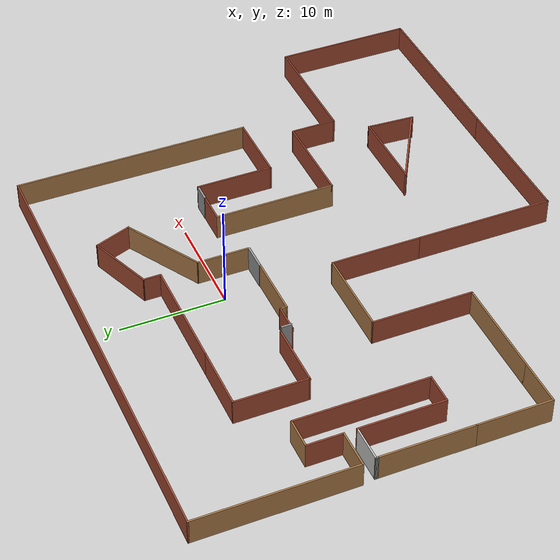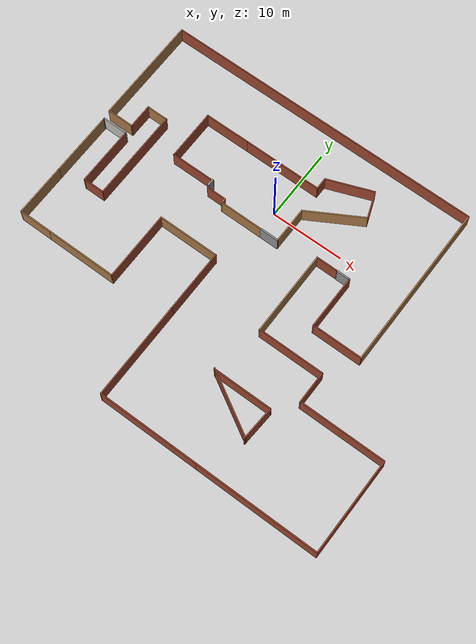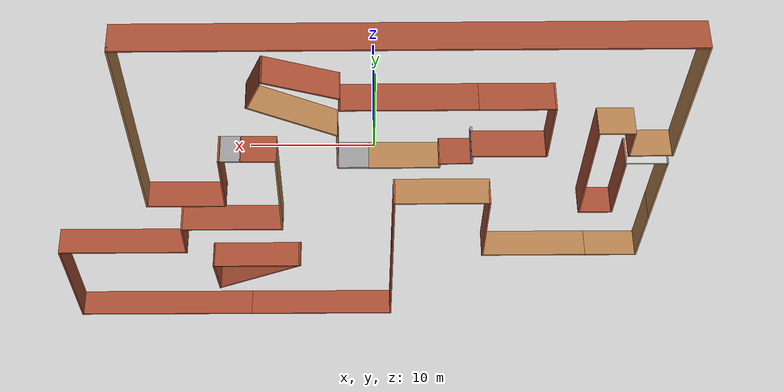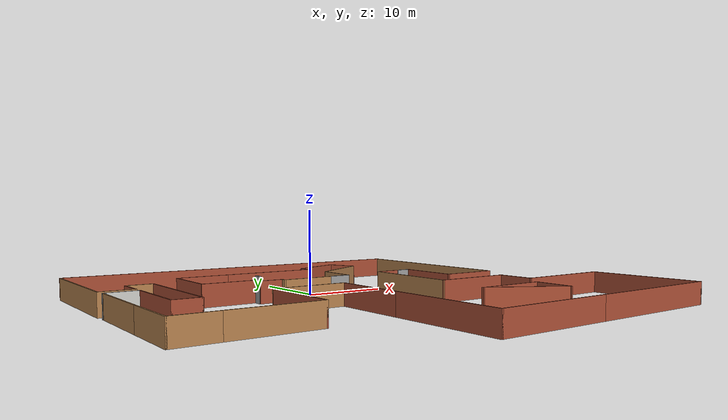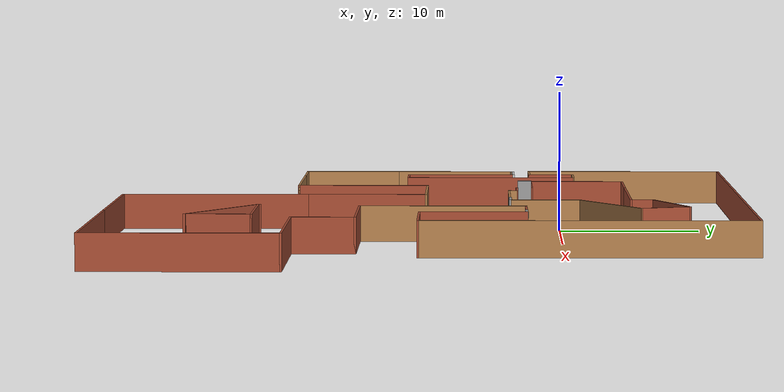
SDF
<?xml version='1.0'?>
<sdf version='1.7'>
  <model name='world_Car'>
    <pose>2.29991 -9.29098 0 0 -0 0</pose>
    <link name='Door_1'>
      <collision name='Door_1_Collision'>
        <geometry>
          <box>
            <size>1.664 0.2 2.5</size>
          </box>
        </geometry>
        <pose>0 0 1.25 0 -0 0</pose>
      </collision>
      <visual name='Door_1_Visual'>
        <pose>0 0 1.25 0 -0 0</pose>
        <geometry>
          <box>
            <size>1.664 0.2 2.5</size>
          </box>
        </geometry>
        <material>
          <script>
            <uri>file://media/materials/scripts/gazebo.material</uri>
            <name>Gazebo/Grey</name>
          </script>
        </material>
      </visual>
      <pose>9.70506 6.77905 0 0 -0 0</pose>
    </link>
    <link name='Door_2'>
      <collision name='Door_2_Collision'>
        <geometry>
          <box>
            <size>2.582 0.2 2.5</size>
          </box>
        </geometry>
        <pose>0 0 1.25 0 -0 0</pose>
      </collision>
      <visual name='Door_2_Visual'>
        <pose>0 0 1.25 0 -0 0</pose>
        <geometry>
          <box>
            <size>2.582 0.2 2.5</size>
          </box>
        </geometry>
        <material>
          <script>
            <uri>file://media/materials/scripts/gazebo.material</uri>
            <name>Gazebo/Grey</name>
          </script>
        </material>
      </visual>
      <pose>-0.559145 5.75033 0 0 -0 0</pose>
    </link>
    <link name='Wall_10'>
      <collision name='Wall_10_Collision'>
        <geometry>
          <box>
            <size>15 0.15 2.5</size>
          </box>
        </geometry>
        <pose>0 0 1.25 0 -0 0</pose>
      </collision>
      <visual name='Wall_10_Visual'>
        <pose>0 0 1.25 0 -0 0</pose>
        <geometry>
          <box>
            <size>15 0.15 2.5</size>
          </box>
        </geometry>
        <material>
          <script>
            <uri>file://media/materials/scripts/gazebo.material</uri>
            <name>Gazebo/Wood</name>
          </script>
          <ambient>1 1 1 1</ambient>
        </material>
        <meta>
          <layer>0</layer>
        </meta>
      </visual>
      <pose>-26.8438 14.8473 0 0 -0 -1.5708</pose>
    </link>
    <link name='Wall_101'>
      <collision name='Wall_101_Collision'>
        <geometry>
          <box>
            <size>8.25 0.15 2.5</size>
          </box>
        </geometry>
        <pose>0 0 1.25 0 -0 0</pose>
      </collision>
      <visual name='Wall_101_Visual'>
        <pose>0 0 1.25 0 -0 0</pose>
        <geometry>
          <box>
            <size>8.25 0.15 2.5</size>
          </box>
        </geometry>
        <material>
          <script>
            <uri>file://media/materials/scripts/gazebo.material</uri>
            <name>Gazebo/Wood</name>
          </script>
          <ambient>1 1 1 1</ambient>
        </material>
        <meta>
          <layer>0</layer>
        </meta>
      </visual>
      <pose>4.23205 12.7345 0 0 -0 -2.61799</pose>
    </link>
    <link name='Wall_103'>
      <collision name='Wall_103_Collision'>
        <geometry>
          <box>
            <size>5 0.15 2.5</size>
          </box>
        </geometry>
        <pose>0 0 1.25 0 -0 0</pose>
      </collision>
      <visual name='Wall_103_Visual'>
        <pose>0 0 1.25 0 -0 0</pose>
        <geometry>
          <box>
            <size>5 0.15 2.5</size>
          </box>
        </geometry>
        <material>
          <script>
            <uri>file://media/materials/scripts/gazebo.material</uri>
            <name>Gazebo/Wood</name>
          </script>
          <ambient>1 1 1 1</ambient>
        </material>
        <meta>
          <layer>0</layer>
        </meta>
      </visual>
      <pose>0.724642 8.28455 0 0 -0 -1.5708</pose>
    </link>
    <link name='Wall_105'>
      <collision name='Wall_105_Collision'>
        <geometry>
          <box>
            <size>6 0.15 2.5</size>
          </box>
        </geometry>
        <pose>0 0 1.25 0 -0 0</pose>
      </collision>
      <visual name='Wall_105_Visual'>
        <pose>0 0 1.25 0 -0 0</pose>
        <geometry>
          <box>
            <size>6 0.15 2.5</size>
          </box>
        </geometry>
        <material>
          <script>
            <uri>file://media/materials/scripts/gazebo.material</uri>
            <name>Gazebo/Wood</name>
          </script>
          <ambient>1 1 1 1</ambient>
        </material>
        <meta>
          <layer>0</layer>
        </meta>
      </visual>
      <pose>-4.8152 5.7206 0 0 -0 3.14159</pose>
    </link>
    <link name='Wall_106'>
      <collision name='Wall_106_Collision'>
        <geometry>
          <box>
            <size>0.75 0.15 2.5</size>
          </box>
        </geometry>
        <pose>0 0 1.25 0 -0 0</pose>
      </collision>
      <visual name='Wall_106_Visual'>
        <pose>0 0 1.25 0 -0 0</pose>
        <geometry>
          <box>
            <size>0.75 0.15 2.5</size>
          </box>
        </geometry>
        <material>
          <script>
            <uri>file://media/materials/scripts/gazebo.material</uri>
            <name>Gazebo/Wood</name>
          </script>
          <ambient>1 1 1 1</ambient>
        </material>
        <meta>
          <layer>0</layer>
        </meta>
      </visual>
      <pose>-7.7402 6.0206 0 0 -0 1.5708</pose>
    </link>
    <link name='Wall_107'>
      <collision name='Wall_107_Collision'>
        <geometry>
          <box>
            <size>2.76255 0.15 2.5</size>
          </box>
        </geometry>
        <pose>0 0 1.25 0 -0 0</pose>
      </collision>
      <visual name='Wall_107_Visual'>
        <pose>0 0 1.25 0 -0 0</pose>
        <geometry>
          <box>
            <size>2.76255 0.15 2.5</size>
          </box>
        </geometry>
        <material>
          <script>
            <uri>file://media/materials/scripts/gazebo.material</uri>
            <name>Gazebo/Bricks</name>
          </script>
          <ambient>1 1 1 1</ambient>
        </material>
        <meta>
          <layer>0</layer>
        </meta>
      </visual>
      <pose>-9.04647 6.32244 0 0 -0 3.14019</pose>
    </link>
    <link name='Wall_113'>
      <collision name='Wall_113_Collision'>
        <geometry>
          <box>
            <size>6.25 0.15 2.5</size>
          </box>
        </geometry>
        <pose>0 0 1.25 0 -0 0</pose>
      </collision>
      <visual name='Wall_113_Visual'>
        <pose>0 0 1.25 0 -0 0</pose>
        <geometry>
          <box>
            <size>6.25 0.15 2.5</size>
          </box>
        </geometry>
        <material>
          <script>
            <uri>file://media/materials/scripts/gazebo.material</uri>
            <name>Gazebo/Bricks</name>
          </script>
          <ambient>1 1 1 1</ambient>
        </material>
        <meta>
          <layer>0</layer>
        </meta>
      </visual>
      <pose>-13.4438 7.42225 0 0 -0 0</pose>
    </link>
    <link name='Wall_116'>
      <collision name='Wall_116_Collision'>
        <geometry>
          <box>
            <size>3.75 0.15 2.5</size>
          </box>
        </geometry>
        <pose>0 0 1.25 0 -0 0</pose>
      </collision>
      <visual name='Wall_116_Visual'>
        <pose>0 0 1.25 0 -0 0</pose>
        <geometry>
          <box>
            <size>3.75 0.15 2.5</size>
          </box>
        </geometry>
        <material>
          <script>
            <uri>file://media/materials/scripts/gazebo.material</uri>
            <name>Gazebo/Wood</name>
          </script>
          <ambient>1 1 1 1</ambient>
        </material>
        <meta>
          <layer>0</layer>
        </meta>
      </visual>
      <pose>-25.0438 7.42225 0 0 -0 0</pose>
    </link>
    <link name='Wall_117'>
      <collision name='Wall_117_Collision'>
        <geometry>
          <box>
            <size>3.5 0.15 2.5</size>
          </box>
        </geometry>
        <pose>0 0 1.25 0 -0 0</pose>
      </collision>
      <visual name='Wall_117_Visual'>
        <pose>0 0 1.25 0 -0 0</pose>
        <geometry>
          <box>
            <size>3.5 0.15 2.5</size>
          </box>
        </geometry>
        <material>
          <script>
            <uri>file://media/materials/scripts/gazebo.material</uri>
            <name>Gazebo/Bricks</name>
          </script>
          <ambient>1 1 1 1</ambient>
        </material>
        <meta>
          <layer>0</layer>
        </meta>
      </visual>
      <pose>-23.2438 9.09725 0 0 -0 1.5708</pose>
    </link>
    <link name='Wall_118'>
      <collision name='Wall_118_Collision'>
        <geometry>
          <box>
            <size>3 0.15 2.5</size>
          </box>
        </geometry>
        <pose>0 0 1.25 0 -0 0</pose>
      </collision>
      <visual name='Wall_118_Visual'>
        <pose>0 0 1.25 0 -0 0</pose>
        <geometry>
          <box>
            <size>3 0.15 2.5</size>
          </box>
        </geometry>
        <material>
          <script>
            <uri>file://media/materials/scripts/gazebo.material</uri>
            <name>Gazebo/Wood</name>
          </script>
          <ambient>1 1 1 1</ambient>
        </material>
        <meta>
          <layer>0</layer>
        </meta>
      </visual>
      <pose>-21.8188 10.7723 0 0 -0 0</pose>
    </link>
    <link name='Wall_12'>
      <collision name='Wall_12_Collision'>
        <geometry>
          <box>
            <size>7.04626 0.15 2.5</size>
          </box>
        </geometry>
        <pose>0 0 1.25 0 -0 0</pose>
      </collision>
      <visual name='Wall_12_Visual'>
        <pose>0 0 1.25 0 -0 0</pose>
        <geometry>
          <box>
            <size>7.04626 0.15 2.5</size>
          </box>
        </geometry>
        <material>
          <script>
            <uri>file://media/materials/scripts/gazebo.material</uri>
            <name>Gazebo/Bricks</name>
          </script>
          <ambient>1 1 1 1</ambient>
        </material>
        <meta>
          <layer>0</layer>
        </meta>
      </visual>
      <pose>-16.4938 10.8704 0 0 -0 1.5708</pose>
    </link>
    <link name='Wall_123'>
      <collision name='Wall_123_Collision'>
        <geometry>
          <box>
            <size>3.6035 0.15 2.5</size>
          </box>
        </geometry>
        <pose>0 0 1.25 0 -0 0</pose>
      </collision>
      <visual name='Wall_123_Visual'>
        <pose>0 0 1.25 0 -0 0</pose>
        <geometry>
          <box>
            <size>3.6035 0.15 2.5</size>
          </box>
        </geometry>
        <material>
          <script>
            <uri>file://media/materials/scripts/gazebo.material</uri>
            <name>Gazebo/CeilingTiled</name>
          </script>
          <ambient>1 1 1 1</ambient>
        </material>
        <meta>
          <layer>0</layer>
        </meta>
      </visual>
      <pose>-24.9424 6.19868 0 0 -0 3.14159</pose>
    </link>
    <link name='Wall_124'>
      <collision name='Wall_124_Collision'>
        <geometry>
          <box>
            <size>0.321428 0.15 2.5</size>
          </box>
        </geometry>
        <pose>0 0 1.25 0 -0 0</pose>
      </collision>
      <visual name='Wall_124_Visual'>
        <pose>0 0 1.25 0 -0 0</pose>
        <geometry>
          <box>
            <size>0.321428 0.15 2.5</size>
          </box>
        </geometry>
        <material>
          <script>
            <uri>file://media/materials/scripts/gazebo.material</uri>
            <name>Gazebo/Grey</name>
          </script>
          <ambient>1 1 1 1</ambient>
        </material>
        <meta>
          <layer>0</layer>
        </meta>
      </visual>
      <pose>-26.6627 6.11322 0 0 -0 -1.49508</pose>
    </link>
    <link name='Wall_125'>
      <collision name='Wall_125_Collision'>
        <geometry>
          <box>
            <size>0.15 0.15 2.5</size>
          </box>
        </geometry>
        <pose>0 0 1.25 0 -0 0</pose>
      </collision>
      <visual name='Wall_125_Visual'>
        <pose>0 0 1.25 0 -0 0</pose>
        <geometry>
          <box>
            <size>0.15 0.15 2.5</size>
          </box>
        </geometry>
        <material>
          <script>
            <uri>file://media/materials/scripts/gazebo.material</uri>
            <name>Gazebo/Grey</name>
          </script>
          <ambient>1 1 1 1</ambient>
        </material>
        <meta>
          <layer>0</layer>
        </meta>
      </visual>
      <pose>-26.6562 6.02775 0 0 -0 0</pose>
    </link>
    <link name='Wall_127'>
      <collision name='Wall_127_Collision'>
        <geometry>
          <box>
            <size>8.25 0.15 2.5</size>
          </box>
        </geometry>
        <pose>0 0 1.25 0 -0 0</pose>
      </collision>
      <visual name='Wall_127_Visual'>
        <pose>0 0 1.25 0 -0 0</pose>
        <geometry>
          <box>
            <size>8.25 0.15 2.5</size>
          </box>
        </geometry>
        <material>
          <script>
            <uri>file://media/materials/scripts/gazebo.material</uri>
            <name>Gazebo/Bricks</name>
          </script>
          <ambient>1 1 1 1</ambient>
        </material>
        <meta>
          <layer>0</layer>
        </meta>
      </visual>
      <pose>-23.2157 2.14868 0 0 -0 -1.5708</pose>
    </link>
    <link name='Wall_128'>
      <collision name='Wall_128_Collision'>
        <geometry>
          <box>
            <size>2.967 0.15 2.5</size>
          </box>
        </geometry>
        <pose>0 0 1.25 0 -0 0</pose>
      </collision>
      <visual name='Wall_128_Visual'>
        <pose>0 0 1.25 0 -0 0</pose>
        <geometry>
          <box>
            <size>2.967 0.15 2.5</size>
          </box>
        </geometry>
        <material>
          <script>
            <uri>file://media/materials/scripts/gazebo.material</uri>
            <name>Gazebo/Bricks</name>
          </script>
          <ambient>1 1 1 1</ambient>
        </material>
        <meta>
          <layer>0</layer>
        </meta>
      </visual>
      <pose>-21.8072 -1.90132 0 0 -0 0</pose>
    </link>
    <link name='Wall_129'>
      <collision name='Wall_129_Collision'>
        <geometry>
          <box>
            <size>12.75 0.15 2.5</size>
          </box>
        </geometry>
        <pose>0 0 1.25 0 -0 0</pose>
      </collision>
      <visual name='Wall_129_Visual'>
        <pose>0 0 1.25 0 -0 0</pose>
        <geometry>
          <box>
            <size>12.75 0.15 2.5</size>
          </box>
        </geometry>
        <material>
          <script>
            <uri>file://media/materials/scripts/gazebo.material</uri>
            <name>Gazebo/Bricks</name>
          </script>
          <ambient>1 1 1 1</ambient>
        </material>
        <meta>
          <layer>0</layer>
        </meta>
      </visual>
      <pose>-20.3531 4.39868 0 0 -0 1.5708</pose>
    </link>
    <link name='Wall_13'>
      <collision name='Wall_13_Collision'>
        <geometry>
          <box>
            <size>6.25 0.15 2.5</size>
          </box>
        </geometry>
        <pose>0 0 1.25 0 -0 0</pose>
      </collision>
      <visual name='Wall_13_Visual'>
        <pose>0 0 1.25 0 -0 0</pose>
        <geometry>
          <box>
            <size>6.25 0.15 2.5</size>
          </box>
        </geometry>
        <material>
          <script>
            <uri>file://media/materials/scripts/gazebo.material</uri>
            <name>Gazebo/Bricks</name>
          </script>
          <ambient>1 1 1 1</ambient>
        </material>
        <meta>
          <layer>0</layer>
        </meta>
      </visual>
      <pose>-13.4207 14.3185 0 0 -0 0</pose>
    </link>
    <link name='Wall_5'>
      <collision name='Wall_5_Collision'>
        <geometry>
          <box>
            <size>44.5 0.15 2.5</size>
          </box>
        </geometry>
        <pose>0 0 1.25 0 -0 0</pose>
      </collision>
      <visual name='Wall_5_Visual'>
        <pose>0 0 1.25 0 -0 0</pose>
        <geometry>
          <box>
            <size>44.5 0.15 2.5</size>
          </box>
        </geometry>
        <material>
          <script>
            <uri>file://media/materials/scripts/gazebo.material</uri>
            <name>Gazebo/Bricks</name>
          </script>
          <ambient>1 1 1 1</ambient>
        </material>
        <meta>
          <layer>0</layer>
        </meta>
      </visual>
      <pose>-4.66878 22.2723 0 0 -0 0</pose>
    </link>
    <link name='Wall_6'>
      <collision name='Wall_6_Collision'>
        <geometry>
          <box>
            <size>23 0.15 2.5</size>
          </box>
        </geometry>
        <pose>0 0 1.25 0 -0 0</pose>
      </collision>
      <visual name='Wall_6_Visual'>
        <pose>0 0 1.25 0 -0 0</pose>
        <geometry>
          <box>
            <size>23 0.15 2.5</size>
          </box>
        </geometry>
        <material>
          <script>
            <uri>file://media/materials/scripts/gazebo.material</uri>
            <name>Gazebo/Wood</name>
          </script>
          <ambient>1 1 1 1</ambient>
        </material>
        <meta>
          <layer>0</layer>
        </meta>
      </visual>
      <pose>17.5062 10.8473 0 0 -0 -1.5708</pose>
    </link>
    <link name='Wall_7'>
      <collision name='Wall_7_Collision'>
        <geometry>
          <box>
            <size>7 0.15 2.5</size>
          </box>
        </geometry>
        <pose>0 0 1.25 0 -0 0</pose>
      </collision>
      <visual name='Wall_7_Visual'>
        <pose>0 0 1.25 0 -0 0</pose>
        <geometry>
          <box>
            <size>7 0.15 2.5</size>
          </box>
        </geometry>
        <material>
          <script>
            <uri>file://media/materials/scripts/gazebo.material</uri>
            <name>Gazebo/Bricks</name>
          </script>
          <ambient>1 1 1 1</ambient>
        </material>
        <meta>
          <layer>0</layer>
        </meta>
      </visual>
      <pose>14.0812 -0.577745 0 0 -0 3.14159</pose>
    </link>
    <link name='Wall_71'>
      <collision name='Wall_71_Collision'>
        <geometry>
          <box>
            <size>9 0.15 2.5</size>
          </box>
        </geometry>
        <pose>0 0 1.25 0 -0 0</pose>
      </collision>
      <visual name='Wall_71_Visual'>
        <pose>0 0 1.25 0 -0 0</pose>
        <geometry>
          <box>
            <size>9 0.15 2.5</size>
          </box>
        </geometry>
        <material>
          <script>
            <uri>file://media/materials/scripts/gazebo.material</uri>
            <name>Gazebo/Wood</name>
          </script>
          <ambient>1 1 1 1</ambient>
        </material>
        <meta>
          <layer>0</layer>
        </meta>
      </visual>
      <pose>-26.6562 1.60275 0 0 -0 -1.5708</pose>
    </link>
    <link name='Wall_72'>
      <collision name='Wall_72_Collision'>
        <geometry>
          <box>
            <size>7.25 0.15 2.5</size>
          </box>
        </geometry>
        <pose>0 0 1.25 0 -0 0</pose>
      </collision>
      <visual name='Wall_72_Visual'>
        <pose>0 0 1.25 0 -0 0</pose>
        <geometry>
          <box>
            <size>7.25 0.15 2.5</size>
          </box>
        </geometry>
        <material>
          <script>
            <uri>file://media/materials/scripts/gazebo.material</uri>
            <name>Gazebo/Wood</name>
          </script>
          <ambient>1 1 1 1</ambient>
        </material>
        <meta>
          <layer>0</layer>
        </meta>
      </visual>
      <pose>-26.6562 -6.37225 0 0 -0 -1.5708</pose>
    </link>
    <link name='Wall_73'>
      <collision name='Wall_73_Collision'>
        <geometry>
          <box>
            <size>4.75 0.15 2.5</size>
          </box>
        </geometry>
        <pose>0 0 1.25 0 -0 0</pose>
      </collision>
      <visual name='Wall_73_Visual'>
        <pose>0 0 1.25 0 -0 0</pose>
        <geometry>
          <box>
            <size>4.75 0.15 2.5</size>
          </box>
        </geometry>
        <material>
          <script>
            <uri>file://media/materials/scripts/gazebo.material</uri>
            <name>Gazebo/Wood</name>
          </script>
          <ambient>1 1 1 1</ambient>
        </material>
        <meta>
          <layer>0</layer>
        </meta>
      </visual>
      <pose>-24.3562 -9.92225 0 0 -0 0</pose>
    </link>
    <link name='Wall_74'>
      <collision name='Wall_74_Collision'>
        <geometry>
          <box>
            <size>9.75 0.15 2.5</size>
          </box>
        </geometry>
        <pose>0 0 1.25 0 -0 0</pose>
      </collision>
      <visual name='Wall_74_Visual'>
        <pose>0 0 1.25 0 -0 0</pose>
        <geometry>
          <box>
            <size>9.75 0.15 2.5</size>
          </box>
        </geometry>
        <material>
          <script>
            <uri>file://media/materials/scripts/gazebo.material</uri>
            <name>Gazebo/Wood</name>
          </script>
          <ambient>1 1 1 1</ambient>
        </material>
        <meta>
          <layer>0</layer>
        </meta>
      </visual>
      <pose>-17.2562 -9.92225 0 0 -0 0</pose>
    </link>
    <link name='Wall_75'>
      <collision name='Wall_75_Collision'>
        <geometry>
          <box>
            <size>9.75 0.15 2.5</size>
          </box>
        </geometry>
        <pose>0 0 1.25 0 -0 0</pose>
      </collision>
      <visual name='Wall_75_Visual'>
        <pose>0 0 1.25 0 -0 0</pose>
        <geometry>
          <box>
            <size>9.75 0.15 2.5</size>
          </box>
        </geometry>
        <material>
          <script>
            <uri>file://media/materials/scripts/gazebo.material</uri>
            <name>Gazebo/Bricks</name>
          </script>
          <ambient>1 1 1 1</ambient>
        </material>
        <meta>
          <layer>0</layer>
        </meta>
      </visual>
      <pose>-12.4562 -5.12225 0 0 -0 1.5708</pose>
    </link>
    <link name='Wall_76'>
      <collision name='Wall_76_Collision'>
        <geometry>
          <box>
            <size>8.5 0.15 2.5</size>
          </box>
        </geometry>
        <pose>0 0 1.25 0 -0 0</pose>
      </collision>
      <visual name='Wall_76_Visual'>
        <pose>0 0 1.25 0 -0 0</pose>
        <geometry>
          <box>
            <size>8.5 0.15 2.5</size>
          </box>
        </geometry>
        <material>
          <script>
            <uri>file://media/materials/scripts/gazebo.material</uri>
            <name>Gazebo/Wood</name>
          </script>
          <ambient>1 1 1 1</ambient>
        </material>
        <meta>
          <layer>0</layer>
        </meta>
      </visual>
      <pose>-8.28122 -0.322253 0 0 -0 0</pose>
    </link>
    <link name='Wall_77'>
      <collision name='Wall_77_Collision'>
        <geometry>
          <box>
            <size>8.75 0.15 2.5</size>
          </box>
        </geometry>
        <pose>0 0 1.25 0 -0 0</pose>
      </collision>
      <visual name='Wall_77_Visual'>
        <pose>0 0 1.25 0 -0 0</pose>
        <geometry>
          <box>
            <size>8.75 0.15 2.5</size>
          </box>
        </geometry>
        <material>
          <script>
            <uri>file://media/materials/scripts/gazebo.material</uri>
            <name>Gazebo/Bricks</name>
          </script>
          <ambient>1 1 1 1</ambient>
        </material>
        <meta>
          <layer>0</layer>
        </meta>
      </visual>
      <pose>-4.10622 -4.62225 0 0 -0 -1.5708</pose>
    </link>
    <link name='Wall_78'>
      <collision name='Wall_78_Collision'>
        <geometry>
          <box>
            <size>13.5 0.15 2.5</size>
          </box>
        </geometry>
        <pose>0 0 1.25 0 -0 0</pose>
      </collision>
      <visual name='Wall_78_Visual'>
        <pose>0 0 1.25 0 -0 0</pose>
        <geometry>
          <box>
            <size>13.5 0.15 2.5</size>
          </box>
        </geometry>
        <material>
          <script>
            <uri>file://media/materials/scripts/gazebo.material</uri>
            <name>Gazebo/Bricks</name>
          </script>
          <ambient>1 1 1 1</ambient>
        </material>
        <meta>
          <layer>0</layer>
        </meta>
      </visual>
      <pose>-4.10622 -15.5973 0 0 -0 -1.5708</pose>
    </link>
    <link name='Wall_79'>
      <collision name='Wall_79_Collision'>
        <geometry>
          <box>
            <size>14 0.15 2.5</size>
          </box>
        </geometry>
        <pose>0 0 1.25 0 -0 0</pose>
      </collision>
      <visual name='Wall_79_Visual'>
        <pose>0 0 1.25 0 -0 0</pose>
        <geometry>
          <box>
            <size>14 0.15 2.5</size>
          </box>
        </geometry>
        <material>
          <script>
            <uri>file://media/materials/scripts/gazebo.material</uri>
            <name>Gazebo/Bricks</name>
          </script>
          <ambient>1 1 1 1</ambient>
        </material>
        <meta>
          <layer>0</layer>
        </meta>
      </visual>
      <pose>2.81878 -22.2723 0 0 -0 0</pose>
    </link>
    <link name='Wall_8'>
      <collision name='Wall_8_Collision'>
        <geometry>
          <box>
            <size>7.5 0.15 2.5</size>
          </box>
        </geometry>
        <pose>0 0 1.25 0 -0 0</pose>
      </collision>
      <visual name='Wall_8_Visual'>
        <pose>0 0 1.25 0 -0 0</pose>
        <geometry>
          <box>
            <size>7.5 0.15 2.5</size>
          </box>
        </geometry>
        <material>
          <script>
            <uri>file://media/materials/scripts/gazebo.material</uri>
            <name>Gazebo/Bricks</name>
          </script>
          <ambient>1 1 1 1</ambient>
        </material>
        <meta>
          <layer>0</layer>
        </meta>
      </visual>
      <pose>10.6562 3.09725 0 0 -0 1.5708</pose>
    </link>
    <link name='Wall_80'>
      <collision name='Wall_80_Collision'>
        <geometry>
          <box>
            <size>17.25 0.15 2.5</size>
          </box>
        </geometry>
        <pose>0 0 1.25 0 -0 0</pose>
      </collision>
      <visual name='Wall_80_Visual'>
        <pose>0 0 1.25 0 -0 0</pose>
        <geometry>
          <box>
            <size>17.25 0.15 2.5</size>
          </box>
        </geometry>
        <material>
          <script>
            <uri>file://media/materials/scripts/gazebo.material</uri>
            <name>Gazebo/Bricks</name>
          </script>
          <ambient>1 1 1 1</ambient>
        </material>
        <meta>
          <layer>0</layer>
        </meta>
      </visual>
      <pose>18.2938 -22.2723 0 0 -0 0</pose>
    </link>
    <link name='Wall_81'>
      <collision name='Wall_81_Collision'>
        <geometry>
          <box>
            <size>13.25 0.15 2.5</size>
          </box>
        </geometry>
        <pose>0 0 1.25 0 -0 0</pose>
      </collision>
      <visual name='Wall_81_Visual'>
        <pose>0 0 1.25 0 -0 0</pose>
        <geometry>
          <box>
            <size>13.25 0.15 2.5</size>
          </box>
        </geometry>
        <material>
          <script>
            <uri>file://media/materials/scripts/gazebo.material</uri>
            <name>Gazebo/Bricks</name>
          </script>
          <ambient>1 1 1 1</ambient>
        </material>
        <meta>
          <layer>0</layer>
        </meta>
      </visual>
      <pose>26.8438 -15.7223 0 0 -0 1.5708</pose>
    </link>
    <link name='Wall_82'>
      <collision name='Wall_82_Collision'>
        <geometry>
          <box>
            <size>12 0.15 2.5</size>
          </box>
        </geometry>
        <pose>0 0 1.25 0 -0 0</pose>
      </collision>
      <visual name='Wall_82_Visual'>
        <pose>0 0 1.25 0 -0 0</pose>
        <geometry>
          <box>
            <size>12 0.15 2.5</size>
          </box>
        </geometry>
        <material>
          <script>
            <uri>file://media/materials/scripts/gazebo.material</uri>
            <name>Gazebo/Bricks</name>
          </script>
          <ambient>1 1 1 1</ambient>
        </material>
        <meta>
          <layer>0</layer>
        </meta>
      </visual>
      <pose>20.9188 -9.17225 0 0 -0 3.14159</pose>
    </link>
    <link name='Wall_83'>
      <collision name='Wall_83_Collision'>
        <geometry>
          <box>
            <size>4.5 0.15 2.5</size>
          </box>
        </geometry>
        <pose>0 0 1.25 0 -0 0</pose>
      </collision>
      <visual name='Wall_83_Visual'>
        <pose>0 0 1.25 0 -0 0</pose>
        <geometry>
          <box>
            <size>4.5 0.15 2.5</size>
          </box>
        </geometry>
        <material>
          <script>
            <uri>file://media/materials/scripts/gazebo.material</uri>
            <name>Gazebo/Bricks</name>
          </script>
          <ambient>1 1 1 1</ambient>
        </material>
        <meta>
          <layer>0</layer>
        </meta>
      </visual>
      <pose>14.9938 -6.99725 0 0 -0 1.5708</pose>
    </link>
    <link name='Wall_84'>
      <collision name='Wall_84_Collision'>
        <geometry>
          <box>
            <size>9.25 0.15 2.5</size>
          </box>
        </geometry>
        <pose>0 0 1.25 0 -0 0</pose>
      </collision>
      <visual name='Wall_84_Visual'>
        <pose>0 0 1.25 0 -0 0</pose>
        <geometry>
          <box>
            <size>9.25 0.15 2.5</size>
          </box>
        </geometry>
        <material>
          <script>
            <uri>file://media/materials/scripts/gazebo.material</uri>
            <name>Gazebo/Bricks</name>
          </script>
          <ambient>1 1 1 1</ambient>
        </material>
        <meta>
          <layer>0</layer>
        </meta>
      </visual>
      <pose>10.4438 -4.82225 0 0 -0 3.14159</pose>
    </link>
    <link name='Wall_85'>
      <collision name='Wall_85_Collision'>
        <geometry>
          <box>
            <size>11.75 0.15 2.5</size>
          </box>
        </geometry>
        <pose>0 0 1.25 0 -0 0</pose>
      </collision>
      <visual name='Wall_85_Visual'>
        <pose>0 0 1.25 0 -0 0</pose>
        <geometry>
          <box>
            <size>11.75 0.15 2.5</size>
          </box>
        </geometry>
        <material>
          <script>
            <uri>file://media/materials/scripts/gazebo.material</uri>
            <name>Gazebo/Wood</name>
          </script>
          <ambient>1 1 1 1</ambient>
        </material>
        <meta>
          <layer>0</layer>
        </meta>
      </visual>
      <pose>5.89378 0.977747 0 0 -0 1.5708</pose>
    </link>
    <link name='Wall_86'>
      <collision name='Wall_86_Collision'>
        <geometry>
          <box>
            <size>3 0.15 2.5</size>
          </box>
        </geometry>
        <pose>0 0 1.25 0 -0 0</pose>
      </collision>
      <visual name='Wall_86_Visual'>
        <pose>0 0 1.25 0 -0 0</pose>
        <geometry>
          <box>
            <size>3 0.15 2.5</size>
          </box>
        </geometry>
        <material>
          <script>
            <uri>file://media/materials/scripts/gazebo.material</uri>
            <name>Gazebo/Bricks</name>
          </script>
          <ambient>0.921569 0.807843 0.615686 1</ambient>
        </material>
        <meta>
          <layer>0</layer>
        </meta>
      </visual>
      <pose>7.31878 6.77775 0 0 -0 0</pose>
    </link>
    <link name='Wall_88'>
      <collision name='Wall_88_Collision'>
        <geometry>
          <box>
            <size>11 0.15 2.5</size>
          </box>
        </geometry>
        <pose>0 0 1.25 0 -0 0</pose>
      </collision>
      <visual name='Wall_88_Visual'>
        <pose>0 0 1.25 0 -0 0</pose>
        <geometry>
          <box>
            <size>11 0.15 2.5</size>
          </box>
        </geometry>
        <material>
          <script>
            <uri>file://media/materials/scripts/gazebo.material</uri>
            <name>Gazebo/Bricks</name>
          </script>
          <ambient>1 1 1 1</ambient>
        </material>
        <meta>
          <layer>0</layer>
        </meta>
      </visual>
      <pose>-4.94565 14.3185 0 0 -0 0</pose>
    </link>
    <link name='Wall_89'>
      <collision name='Wall_89_Collision'>
        <geometry>
          <box>
            <size>1.75 0.15 2.5</size>
          </box>
        </geometry>
        <pose>0 0 1.25 0 -0 0</pose>
      </collision>
      <visual name='Wall_89_Visual'>
        <pose>0 0 1.25 0 -0 0</pose>
        <geometry>
          <box>
            <size>1.75 0.15 2.5</size>
          </box>
        </geometry>
        <material>
          <script>
            <uri>file://media/materials/scripts/gazebo.material</uri>
            <name>Gazebo/Bricks</name>
          </script>
          <ambient>1 1 1 1</ambient>
        </material>
        <meta>
          <layer>0</layer>
        </meta>
      </visual>
      <pose>0.479351 15.1185 0 0 -0 1.5708</pose>
    </link>
    <link name='Wall_90'>
      <collision name='Wall_90_Collision'>
        <geometry>
          <box>
            <size>6.53309 0.15 2.5</size>
          </box>
        </geometry>
        <pose>0 0 1.25 0 -0 0</pose>
      </collision>
      <visual name='Wall_90_Visual'>
        <pose>0 0 1.25 0 -0 0</pose>
        <geometry>
          <box>
            <size>6.53309 0.15 2.5</size>
          </box>
        </geometry>
        <material>
          <script>
            <uri>file://media/materials/scripts/gazebo.material</uri>
            <name>Gazebo/Bricks</name>
          </script>
          <ambient>1 1 1 1</ambient>
        </material>
        <meta>
          <layer>0</layer>
        </meta>
      </visual>
      <pose>3.46336 17.0506 0 0 -0 0.362617</pose>
    </link>
    <link name='Wall_93'>
      <collision name='Wall_93_Collision'>
        <geometry>
          <box>
            <size>3.80893 0.15 2.5</size>
          </box>
        </geometry>
        <pose>0 0 1.25 0 -0 0</pose>
      </collision>
      <visual name='Wall_93_Visual'>
        <pose>0 0 1.25 0 -0 0</pose>
        <geometry>
          <box>
            <size>3.80893 0.15 2.5</size>
          </box>
        </geometry>
        <material>
          <script>
            <uri>file://media/materials/scripts/gazebo.material</uri>
            <name>Gazebo/Bricks</name>
          </script>
          <ambient>1 1 1 1</ambient>
        </material>
        <meta>
          <layer>0</layer>
        </meta>
      </visual>
      <pose>7.0934 16.4711 0 0 -0 -1.20988</pose>
    </link>
    <link name='Wall_97'>
      <collision name='Wall_97_Collision'>
        <geometry>
          <box>
            <size>9.25 0.15 2.5</size>
          </box>
        </geometry>
        <pose>0 0 1.25 0 -0 0</pose>
      </collision>
      <visual name='Wall_97_Visual'>
        <pose>0 0 1.25 0 -0 0</pose>
        <geometry>
          <box>
            <size>9.25 0.15 2.5</size>
          </box>
        </geometry>
        <material>
          <script>
            <uri>file://media/materials/scripts/gazebo.material</uri>
            <name>Gazebo/Bricks</name>
          </script>
          <ambient>1 1 1 1</ambient>
        </material>
        <meta>
          <layer>0</layer>
        </meta>
      </visual>
      <pose>8.51488 -14.1524 0 0 -0 -0.523599</pose>
    </link>
    <link name='Wall_98'>
      <collision name='Wall_98_Collision'>
        <geometry>
          <box>
            <size>4.72789 0.15 2.5</size>
          </box>
        </geometry>
        <pose>0 0 1.25 0 -0 0</pose>
      </collision>
      <visual name='Wall_98_Visual'>
        <pose>0 0 1.25 0 -0 0</pose>
        <geometry>
          <box>
            <size>4.72789 0.15 2.5</size>
          </box>
        </geometry>
        <material>
          <script>
            <uri>file://media/materials/scripts/gazebo.material</uri>
            <name>Gazebo/Bricks</name>
          </script>
          <ambient>1 1 1 1</ambient>
        </material>
        <meta>
          <layer>0</layer>
        </meta>
      </visual>
      <pose>12.5957 -14.2364 0 0 -0 1.50944</pose>
    </link>
    <link name='Wall_99'>
      <collision name='Wall_99_Collision'>
        <geometry>
          <box>
            <size>8.25 0.15 2.5</size>
          </box>
        </geometry>
        <pose>0 0 1.25 0 -0 0</pose>
      </collision>
      <visual name='Wall_99_Visual'>
        <pose>0 0 1.25 0 -0 0</pose>
        <geometry>
          <box>
            <size>8.25 0.15 2.5</size>
          </box>
        </geometry>
        <material>
          <script>
            <uri>file://media/materials/scripts/gazebo.material</uri>
            <name>Gazebo/Bricks</name>
          </script>
          <ambient>1 1 1 1</ambient>
        </material>
        <meta>
          <layer>0</layer>
        </meta>
      </visual>
      <pose>8.68603 -11.9518 0 0 -0 3.14159</pose>
    </link>
    <link name='Window_4'>
      <collision name='Window_4_Collision'>
        <geometry>
          <box>
            <size>1.01 0.2 3</size>
          </box>
        </geometry>
        <pose>0 0 1.5 0 -0 0</pose>
      </collision>
      <visual name='Window_4_Visual'>
        <pose>0 0 1.5 0 -0 0</pose>
        <geometry>
          <box>
            <size>1.01 0.2 3</size>
          </box>
        </geometry>
        <material>
          <script>
            <uri>file://media/materials/scripts/gazebo.material</uri>
            <name>Gazebo/Grey</name>
          </script>
        </material>
      </visual>
      <pose>-10.3889 6.88398 0 0 -0 -1.58381</pose>
    </link>
    <static>1</static>
  </model>
</sdf>
